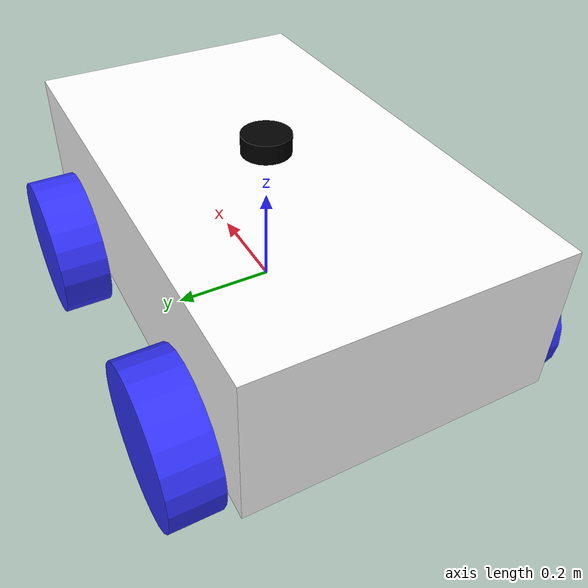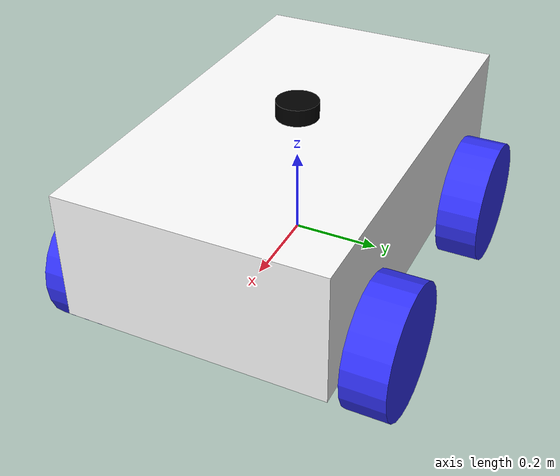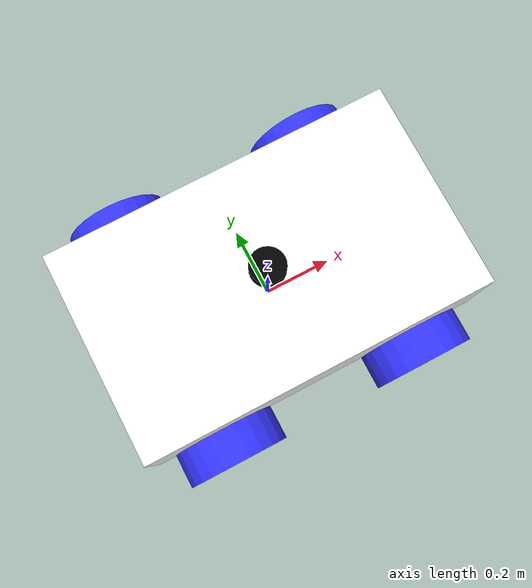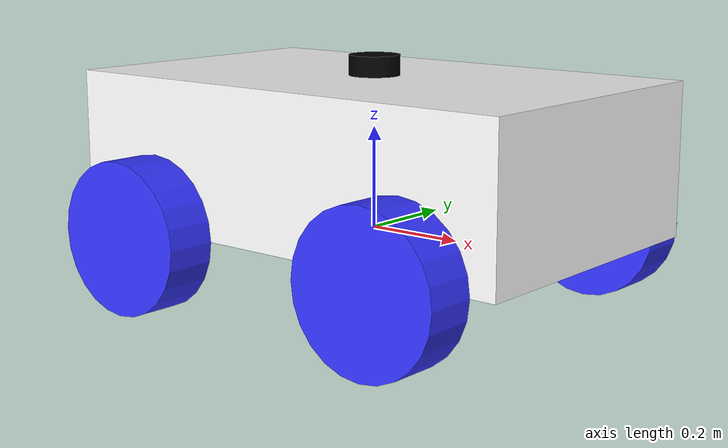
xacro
<?xml version="1.0"?>
<robot xmlns:xacro="http://www.ros.org/wiki/xacro"  name="robot">

    <xacro:include filename="inertial_macros.xacro"/>

    <material name="white">
        <color rgba="1 1 1 1" />
    </material>

    <material name="orange">
        <color rgba="1 0.3 0.1 1" />
    </material>

    <material name="blue">
        <color rgba="0.2 0.2 1 1" />
    </material>

    <material name="black">
        <color rgba="0 0 0 1" />
    </material>

    <material name="red">
        <color rgba="1 0 0 1" />
    </material>

    <!-- Example link -->
    <link name="base_link">
    </link>

    <!-- CHASSIS LINK-->
    <joint name="chassis_joint" type="fixed">
        <parent link= "base_link"/>
        <child link="chassis"/>
        <origin xyz="0 0 0"/>
    </joint>

    <link name="chassis">
        <visual>
            <origin xyz="0 0 0.15"/>
            <geometry>
                <box size="1.0 0.6 0.3"/>
            </geometry>
            <material name="white"/>
        </visual>
        <collision>
            <origin xyz="0 0 0.15" rpy="0 0 0"/>
            <geometry>
                <box size="1.0 0.6 0.3"/>
            </geometry>
        </collision>
        <xacro:inertial_box mass="10.0" x="1.0" y="0.6" z="0.3">
            <origin xyz="0 0 0.15" rpy="0 0 0"/>
        </xacro:inertial_box>
    </link>

    <gazebo reference="chassis">
        <material>Gazebo/White</material>
    </gazebo>

    <!--FORWARD_LEFT LINK-->
    <joint name="fl_wheel_joint" type="continuous">
        <parent link="base_link"/>
        <child link="fl_wheel"/>
        <origin xyz="0.3 0.35 0" rpy="-${pi/2} 0 0"/>
        <axis xyz="0 0 1"/>
    </joint>

    <link name="fl_wheel">
        <visual>
            <geometry>
                <cylinder radius="0.15" length="0.1"/>
            </geometry>
            <material name="blue"/>
        </visual>
        <collision>
            <geometry>
                <cylinder radius="0.15" length="0.1"/>
            </geometry>
        </collision>
        <xacro:inertial_cylinder mass="1.5" length="0.1" radius="0.15">
            <origin xyz="0 0 0" rpy="0 0 0"/>
        </xacro:inertial_cylinder>
    </link>

    <gazebo reference="fl_wheel">
        <material>Gazebo/Blue</material>
        <mu1>8.0</mu1>
        <mu2>0.1</mu2>
        <fdir1>1 0 0</fdir1>
        <kp>10000000.0</kp>
        <kd>1.0</kd>
        <minDepth>0.001</minDepth>
    </gazebo>

    <!--FORWARD_RIGHT LINK-->
    <joint name="fr_wheel_joint" type="continuous">
        <parent link="base_link"/>
        <child link="fr_wheel"/>
        <origin xyz="0.3 -0.35 0" rpy="-${pi/2} 0 0"/>
        <axis xyz="0 0 1"/>
    </joint>

    <link name="fr_wheel">
        <visual>
            <geometry>
                <cylinder radius="0.15" length="0.1"/>
            </geometry>
            <material name="blue"/>
        </visual>
        <collision>
            <geometry>
                <cylinder radius="0.15" length="0.1"/>
            </geometry>
        </collision>
        <xacro:inertial_cylinder mass="1.5" length="0.1" radius="0.15">
            <origin xyz="0 0 0" rpy="0 0 0"/>
        </xacro:inertial_cylinder>
    </link>
    <gazebo reference="fr_wheel">
        <material>Gazebo/Blue</material>
        <mu1>8.0</mu1>
        <mu2>0.1</mu2>
        <fdir1>1 0 0</fdir1>
        <kp>10000000.0</kp>
        <kd>1.0</kd>
        <minDepth>0.001</minDepth>
    </gazebo>

    <!--BACK_LEFT LINK-->
    <joint name="bl_wheel_joint" type="continuous">
        <parent link="base_link"/>
        <child link="bl_wheel"/>
        <origin xyz="-0.3 0.35 0" rpy="-${pi/2} 0 0"/>
        <axis xyz="0 0 1"/>
    </joint>

    <link name="bl_wheel">
        <visual>
            <geometry>
                <cylinder radius="0.15" length="0.1"/>
            </geometry>
            <material name="blue"/>
        </visual>
        <collision>
            <geometry>
                <cylinder radius="0.15" length="0.1"/>
            </geometry>
        </collision>
        <xacro:inertial_cylinder mass="1.5" length="0.1" radius="0.15">
            <origin xyz="0 0 0" rpy="0 0 0"/>
        </xacro:inertial_cylinder>
    </link>
    <gazebo reference="bl_wheel">
        <material>Gazebo/Blue</material>
        <mu1>8.0</mu1>
        <mu2>0.1</mu2>
        <fdir1>1 0 0</fdir1>
        <kp>10000000.0</kp>
        <kd>1.0</kd>
        <minDepth>0.001</minDepth>
    </gazebo>

    <!--BACK_RIGHT LINK-->
    <joint name="br_wheel_joint" type="continuous">
        <parent link="base_link"/>
        <child link="br_wheel"/>
        <origin xyz="-0.3 -0.35 0" rpy="-${pi/2} 0 0"/>
        <axis xyz="0 0 1"/>
    </joint>

    <link name="br_wheel">
        <visual>
            <geometry>
                <cylinder radius="0.15" length="0.1"/>
            </geometry>
            <material name="blue"/>
        </visual>
        <collision>
            <geometry>
                <cylinder radius="0.15" length="0.1"/>
            </geometry>
        </collision>
        <xacro:inertial_cylinder mass="1.5" length="0.1" radius="0.15">
            <origin xyz="0 0 0" rpy="0 0 0"/>
        </xacro:inertial_cylinder>
    </link>
    <gazebo reference="br_wheel">
        <material>Gazebo/Blue</material>
        <mu1>8.0</mu1>
        <mu2>0.1</mu2>
        <fdir1>1 0 0</fdir1>
        <kp>10000000.0</kp>
        <kd>1.0</kd>
        <minDepth>0.001</minDepth>
    </gazebo>

    <joint name="laser_joint" type="fixed">
        <parent link="chassis"/>
        <child link="laser_frame"/>
        <origin xyz="0.0 0 0.32" rpy="0 0 0"/> </joint>

    <link name="laser_frame">
        <visual>
            <geometry>
                <cylinder radius="0.05" length="0.04"/>
            </geometry>
            <material name="black"/>
        </visual>
        <collision>
            <geometry>
                <cylinder radius="0.05" length="0.04"/>
            </geometry>
        </collision>
        <xacro:inertial_cylinder mass="0.1" length="0.04" radius="0.05">
            <origin xyz="0 0 0" rpy="0 0 0"/>
        </xacro:inertial_cylinder>
    </link>

    <gazebo reference="laser_frame">
        <material>Gazebo/Black</material>
        <sensor name="laser" type="ray">
            <pose> 0 0 0 0 0 0 </pose>
            <visualize>true</visualize> <update_rate>10</update_rate>
            <ray>
                <scan>
                    <horizontal>
                        <samples>512</samples>
                        <resolution>1</resolution>
                        <min_angle>-2.35619</min_angle>
                        <max_angle>2.35619</max_angle>
                    </horizontal>
                </scan>
                <range>
                    <min>0.15</min>
                    <max>10</max>
                    <resolution>0.01</resolution>
                </range>
            </ray>
            <plugin name="laser_controller" filename="libgazebo_ros_ray_sensor.so">
                <ros>
                    <argument>~/out:=scan</argument>
                </ros>
                <output_type>sensor_msgs/LaserScan</output_type>
                <frame_name>laser_frame</frame_name>
            </plugin>
        </sensor>
    </gazebo>

</robot>
